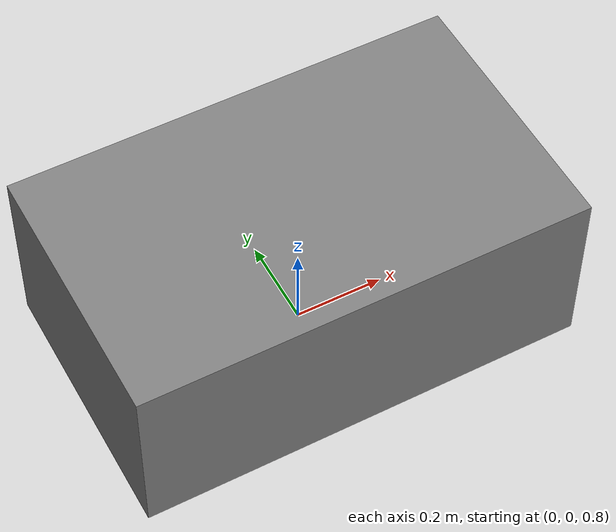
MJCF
<mujoco model="free_body_crba">
            <option gravity="0 0 0" timestep="0.001"/>
            <worldbody>
                <body name="floating" pos="0 0 1">
                    <joint type="free"/>
                    <geom type="box" size="0.5 0.3 0.2" mass="2.5"/>
                </body>
            </worldbody>
        </mujoco>
